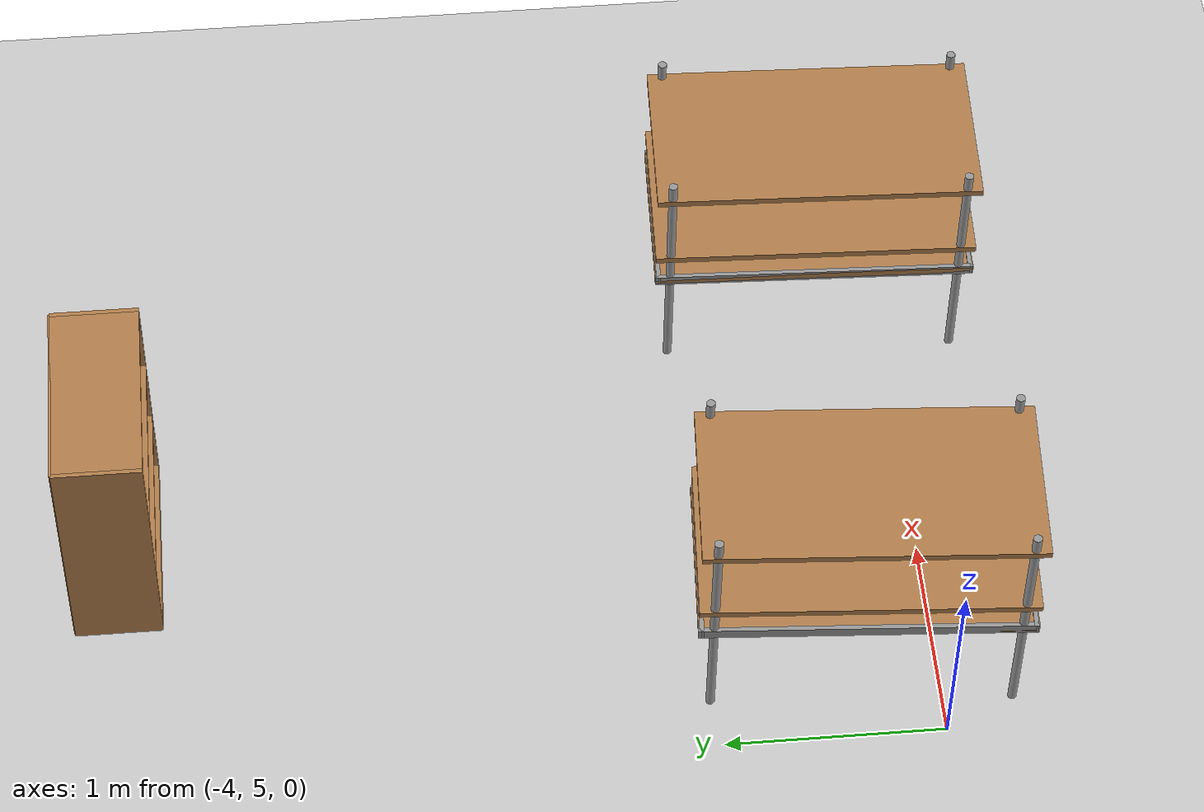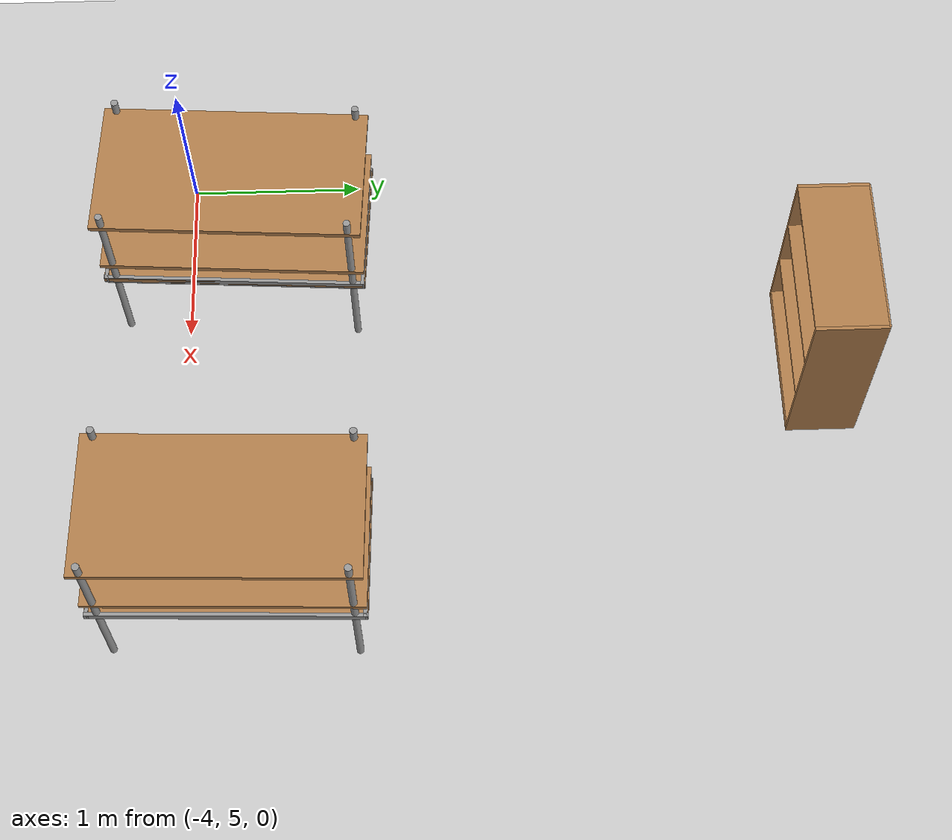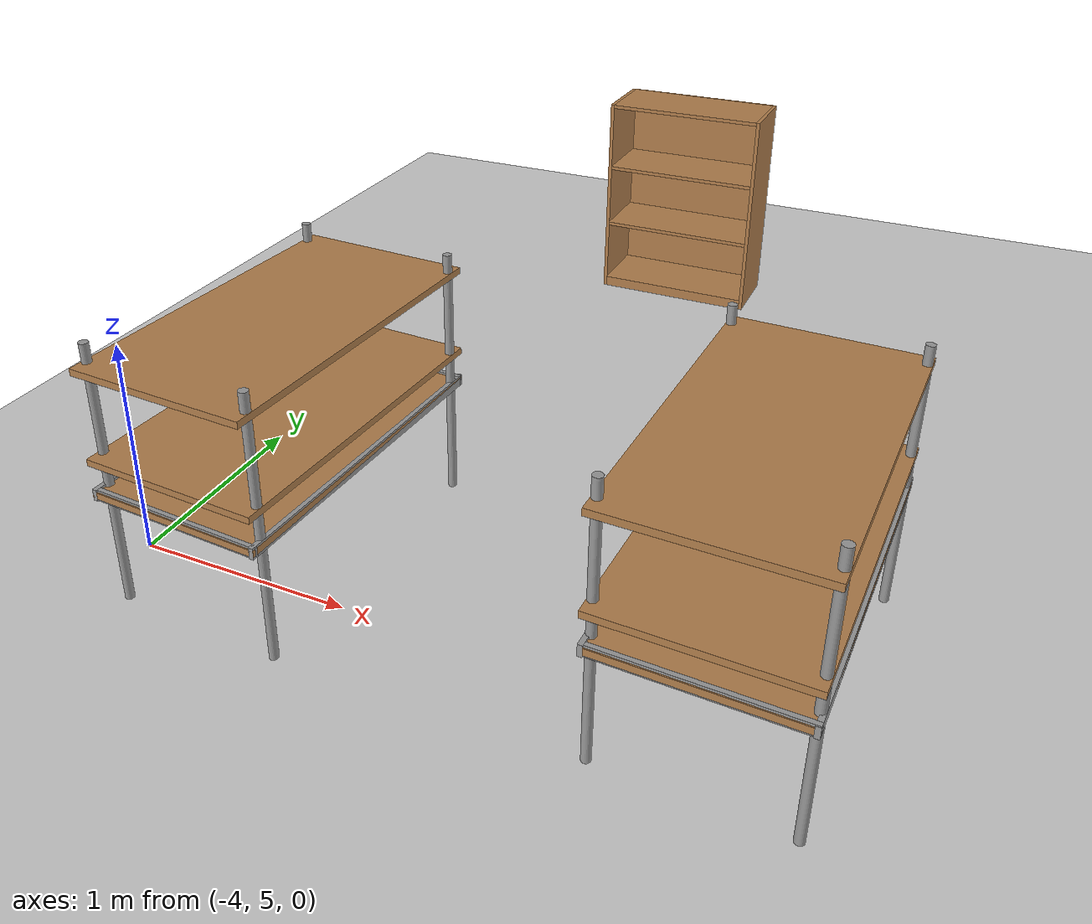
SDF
<sdf version="1.7">
 <world name="default">
  <model name="ground_plane">
   <static>1</static>
   <link name="link">
    <collision name="collision">
     <geometry><plane><normal>0 0 1</normal><size>100 100</size></plane></geometry>
     <surface><friction><ode><mu>100</mu><mu2>50</mu2></ode></friction></surface>
    </collision>
    <visual name="visual">
     <cast_shadows>0</cast_shadows>
     <geometry><plane><normal>0 0 1</normal><size>100 100</size></plane></geometry>
     <material>
      <script><uri>file://media/materials/scripts/gazebo.material</uri><name>Gazebo/Grey</name></script>
     </material>
    </visual>
   </link>
  </model>
  <model name="warehouse_pallet_clone_clone_0">
   <link name="warehouse_pallet::link">
    <pose>0 0 -0 0 -0 1.57</pose>
    <inertial>
     <inertia>
      <ixx>0.0267042</ixx>
      <ixy>0</ixy>
      <ixz>0</ixz>
      <iyy>0.0937875</iyy>
      <iyz>0</iyz>
      <izz>0.120417</izz>
     </inertia>
     <mass>0.5</mass>
    </inertial>
    <visual name="holding1_visual">
     <pose>0 0.39 0.45 0 -0 0</pose>
     <geometry><box><size>1.5 0.02 0.05</size></box></geometry>
     <material>
      <script><uri>file://media/materials/scripts/gazebo.material</uri><name>Gazebo/Grey</name></script>
      <shader type="pixel"><normal_map>__default__</normal_map></shader>
      <ambient>0.3 0.3 0.3 1</ambient>
      <diffuse>0.7 0.7 0.7 1</diffuse>
      <specular>0.01 0.01 0.01 1</specular>
      <emissive>0 0 0 1</emissive>
     </material>
    </visual>
    <visual name="front_left_leg">
     <pose>0.68 0.38 0.5 0 -0 0</pose>
     <geometry><cylinder><radius>0.02</radius><length>1.2</length></cylinder></geometry>
     <material>
      <script><uri>file://media/materials/scripts/gazebo.material</uri><name>Gazebo/Grey</name></script>
      <shader type="pixel"><normal_map>__default__</normal_map></shader>
      <ambient>0.3 0.3 0.3 1</ambient>
      <diffuse>0.7 0.7 0.7 1</diffuse>
      <specular>0.01 0.01 0.01 1</specular>
      <emissive>0 0 0 1</emissive>
     </material>
    </visual>
    <visual name="front_right_leg">
     <pose>0.68 -0.38 0.5 0 -0 0</pose>
     <geometry><cylinder><radius>0.02</radius><length>1.2</length></cylinder></geometry>
     <material>
      <script><uri>file://media/materials/scripts/gazebo.material</uri><name>Gazebo/Grey</name></script>
      <shader type="pixel"><normal_map>__default__</normal_map></shader>
      <ambient>0.3 0.3 0.3 1</ambient>
      <diffuse>0.7 0.7 0.7 1</diffuse>
      <specular>0.01 0.01 0.01 1</specular>
      <emissive>0 0 0 1</emissive>
     </material>
    </visual>
    <visual name="back_right_leg">
     <pose>-0.68 -0.38 0.5 0 -0 0</pose>
     <geometry><cylinder><radius>0.02</radius><length>1.2</length></cylinder></geometry>
     <material>
      <script><uri>file://media/materials/scripts/gazebo.material</uri><name>Gazebo/Grey</name></script>
      <shader type="pixel"><normal_map>__default__</normal_map></shader>
      <ambient>0.3 0.3 0.3 1</ambient>
      <diffuse>0.7 0.7 0.7 1</diffuse>
      <specular>0.01 0.01 0.01 1</specular>
      <emissive>0 0 0 1</emissive>
     </material>
    </visual>
    <visual name="back_left_leg">
     <pose>-0.68 0.38 0.5 0 -0 0</pose>
     <geometry><cylinder><radius>0.02</radius><length>1.2</length></cylinder></geometry>
     <material>
      <script><uri>file://media/materials/scripts/gazebo.material</uri><name>Gazebo/Grey</name></script>
      <shader type="pixel"><normal_map>__default__</normal_map></shader>
      <ambient>0.3 0.3 0.3 1</ambient>
      <diffuse>0.7 0.7 0.7 1</diffuse>
      <specular>0.01 0.01 0.01 1</specular>
      <emissive>0 0 0 1</emissive>
     </material>
    </visual>
    <visual name="visual1">
     <pose>0 0 0.45 0 -0 0</pose>
     <geometry><box><size>1.5 0.8 0.03</size></box></geometry>
     <material>
      <script><uri>file://media/materials/scripts/gazebo.material</uri><name>Gazebo/Wood</name></script>
      <shader type="pixel"><normal_map>__default__</normal_map></shader>
      <ambient>1 1 1 1</ambient>
      <diffuse>1 1 1 1</diffuse>
      <specular>0.2 0.2 0.2 1</specular>
      <emissive>0 0 0 1</emissive>
     </material>
    </visual>
    <visual name="holding2_visual">
     <pose>0 -0.39 0.45 0 -0 0</pose>
     <geometry><box><size>1.5 0.02 0.05</size></box></geometry>
     <material>
      <script><uri>file://media/materials/scripts/gazebo.material</uri><name>Gazebo/Grey</name></script>
      <shader type="pixel"><normal_map>__default__</normal_map></shader>
      <ambient>0.3 0.3 0.3 1</ambient>
      <diffuse>0.7 0.7 0.7 1</diffuse>
      <specular>0.01 0.01 0.01 1</specular>
      <emissive>0 0 0 1</emissive>
     </material>
    </visual>
    <visual name="holding3_visual">
     <pose>0.735 0 0.45 0 -0 1.57</pose>
     <geometry><box><size>0.8 0.02 0.05</size></box></geometry>
     <material>
      <script><uri>file://media/materials/scripts/gazebo.material</uri><name>Gazebo/Grey</name></script>
      <shader type="pixel"><normal_map>__default__</normal_map></shader>
      <ambient>0.3 0.3 0.3 1</ambient>
      <diffuse>0.7 0.7 0.7 1</diffuse>
      <specular>0.01 0.01 0.01 1</specular>
      <emissive>0 0 0 1</emissive>
     </material>
    </visual>
    <visual name="holding4_visual">
     <pose>-0.735 0 0.45 0 -0 1.57</pose>
     <geometry><box><size>0.8 0.02 0.05</size></box></geometry>
     <material>
      <script><uri>file://media/materials/scripts/gazebo.material</uri><name>Gazebo/Grey</name></script>
      <shader type="pixel"><normal_map>__default__</normal_map></shader>
      <ambient>0.3 0.3 0.3 1</ambient>
      <diffuse>0.7 0.7 0.7 1</diffuse>
      <specular>0.01 0.01 0.01 1</specular>
      <emissive>0 0 0 1</emissive>
     </material>
    </visual>
    <visual name="visual2">
     <pose>0 0 0.6 0 -0 0</pose>
     <geometry><box><size>1.5 0.8 0.03</size></box></geometry>
     <material>
      <script><uri>file://media/materials/scripts/gazebo.material</uri><name>Gazebo/Wood</name></script>
      <shader type="pixel"><normal_map>__default__</normal_map></shader>
      <ambient>1 1 1 1</ambient>
      <diffuse>1 1 1 1</diffuse>
      <specular>0.2 0.2 0.2 1</specular>
      <emissive>0 0 0 1</emissive>
     </material>
    </visual>
    <visual name="visual3">
     <pose>0 0 1 0 -0 0</pose>
     <geometry><box><size>1.5 0.8 0.03</size></box></geometry>
     <material>
      <script><uri>file://media/materials/scripts/gazebo.material</uri><name>Gazebo/Wood</name></script>
      <shader type="pixel"><normal_map>__default__</normal_map></shader>
      <ambient>1 1 1 1</ambient>
      <diffuse>1 1 1 1</diffuse>
      <specular>0.2 0.2 0.2 1</specular>
      <emissive>0 0 0 1</emissive>
     </material>
    </visual>
    <collision name="surface1">
     <pose>0 0 0.45 0 -0 0</pose>
     <geometry><box><size>1.5 0.8 0.03</size></box></geometry>
     <surface>
      <friction>
       <ode><mu>20</mu><mu2>20</mu2><fdir1>0 0 0</fdir1><slip1>0</slip1><slip2>0</slip2></ode>
       <torsional>
        <coefficient>1</coefficient>
        <patch_radius>0</patch_radius>
        <surface_radius>0</surface_radius>
        <use_patch_radius>1</use_patch_radius>
        <ode><slip>0</slip></ode>
       </torsional>
      </friction>
      <bounce><restitution_coefficient>0</restitution_coefficient><threshold>1e+06</threshold></bounce>
      <contact>
       <collide_without_contact>0</collide_without_contact>
       <collide_without_contact_bitmask>1</collide_without_contact_bitmask>
       <collide_bitmask>1</collide_bitmask>
       <ode>
        <soft_cfm>0</soft_cfm>
        <soft_erp>0.2</soft_erp>
        <kp>1e+13</kp>
        <kd>1</kd>
        <max_vel>0.01</max_vel>
        <min_depth>0</min_depth>
       </ode>
       <bullet>
        <split_impulse>1</split_impulse>
        <split_impulse_penetration_threshold>-0.01</split_impulse_penetration_threshold>
        <soft_cfm>0</soft_cfm>
        <soft_erp>0.2</soft_erp>
        <kp>1e+13</kp>
        <kd>1</kd>
       </bullet>
      </contact>
     </surface>
    </collision>
    <collision name="holding1_collision">
     <pose>0 0.39 0.45 0 -0 0</pose>
     <geometry><box><size>1.5 0.02 0.05</size></box></geometry>
     <surface>
      <friction>
       <ode><mu>1e+09</mu><mu2>1e+09</mu2><fdir1>0 0 0</fdir1><slip1>0</slip1><slip2>0</slip2></ode>
       <torsional>
        <coefficient>1</coefficient>
        <patch_radius>0</patch_radius>
        <surface_radius>0</surface_radius>
        <use_patch_radius>1</use_patch_radius>
        <ode><slip>0</slip></ode>
       </torsional>
      </friction>
      <bounce><restitution_coefficient>0</restitution_coefficient><threshold>1e+06</threshold></bounce>
      <contact>
       <collide_without_contact>0</collide_without_contact>
       <collide_without_contact_bitmask>1</collide_without_contact_bitmask>
       <collide_bitmask>1</collide_bitmask>
       <ode>
        <soft_cfm>0</soft_cfm>
        <soft_erp>0.2</soft_erp>
        <kp>1e+13</kp>
        <kd>1</kd>
        <max_vel>0.01</max_vel>
        <min_depth>0</min_depth>
       </ode>
       <bullet>
        <split_impulse>1</split_impulse>
        <split_impulse_penetration_threshold>-0.01</split_impulse_penetration_threshold>
        <soft_cfm>0</soft_cfm>
        <soft_erp>0.2</soft_erp>
        <kp>1e+13</kp>
        <kd>1</kd>
       </bullet>
      </contact>
     </surface>
    </collision>
    <collision name="holding2_collision">
     <pose>0 -0.39 0.45 0 -0 0</pose>
     <geometry><box><size>1.5 0.02 0.05</size></box></geometry>
     <surface>
      <friction>
       <ode><mu>1e+09</mu><mu2>1e+09</mu2><fdir1>0 0 0</fdir1><slip1>0</slip1><slip2>0</slip2></ode>
       <torsional>
        <coefficient>1</coefficient>
        <patch_radius>0</patch_radius>
        <surface_radius>0</surface_radius>
        <use_patch_radius>1</use_patch_radius>
        <ode><slip>0</slip></ode>
       </torsional>
      </friction>
      <bounce><restitution_coefficient>0</restitution_coefficient><threshold>1e+06</threshold></bounce>
      <contact>
       <collide_without_contact>0</collide_without_contact>
       <collide_without_contact_bitmask>1</collide_without_contact_bitmask>
       <collide_bitmask>1</collide_bitmask>
       <ode>
        <soft_cfm>0</soft_cfm>
        <soft_erp>0.2</soft_erp>
        <kp>1e+13</kp>
        <kd>1</kd>
        <max_vel>0.01</max_vel>
        <min_depth>0</min_depth>
       </ode>
       <bullet>
        <split_impulse>1</split_impulse>
        <split_impulse_penetration_threshold>-0.01</split_impulse_penetration_threshold>
        <soft_cfm>0</soft_cfm>
        <soft_erp>0.2</soft_erp>
        <kp>1e+13</kp>
        <kd>1</kd>
       </bullet>
      </contact>
     </surface>
    </collision>
    <collision name="holding3_collision">
     <pose>0.735 0 0.45 0 -0 1.57</pose>
     <geometry><box><size>0.8 0.02 0.05</size></box></geometry>
     <surface>
      <friction>
       <ode><mu>1e+09</mu><mu2>1e+09</mu2><fdir1>0 0 0</fdir1><slip1>0</slip1><slip2>0</slip2></ode>
       <torsional>
        <coefficient>1</coefficient>
        <patch_radius>0</patch_radius>
        <surface_radius>0</surface_radius>
        <use_patch_radius>1</use_patch_radius>
        <ode><slip>0</slip></ode>
       </torsional>
      </friction>
      <bounce><restitution_coefficient>0</restitution_coefficient><threshold>1e+06</threshold></bounce>
      <contact>
       <collide_without_contact>0</collide_without_contact>
       <collide_without_contact_bitmask>1</collide_without_contact_bitmask>
       <collide_bitmask>1</collide_bitmask>
       <ode>
        <soft_cfm>0</soft_cfm>
        <soft_erp>0.2</soft_erp>
        <kp>1e+13</kp>
        <kd>1</kd>
        <max_vel>0.01</max_vel>
        <min_depth>0</min_depth>
       </ode>
       <bullet>
        <split_impulse>1</split_impulse>
        <split_impulse_penetration_threshold>-0.01</split_impulse_penetration_threshold>
        <soft_cfm>0</soft_cfm>
        <soft_erp>0.2</soft_erp>
        <kp>1e+13</kp>
        <kd>1</kd>
       </bullet>
      </contact>
     </surface>
    </collision>
    <collision name="holding4_collision">
     <pose>-0.735 0 0.45 0 -0 1.57</pose>
     <geometry><box><size>0.8 0.02 0.05</size></box></geometry>
     <surface>
      <friction>
       <ode><mu>1e+09</mu><mu2>1e+09</mu2><fdir1>0 0 0</fdir1><slip1>0</slip1><slip2>0</slip2></ode>
       <torsional>
        <coefficient>1</coefficient>
        <patch_radius>0</patch_radius>
        <surface_radius>0</surface_radius>
        <use_patch_radius>1</use_patch_radius>
        <ode><slip>0</slip></ode>
       </torsional>
      </friction>
      <bounce><restitution_coefficient>0</restitution_coefficient><threshold>1e+06</threshold></bounce>
      <contact>
       <collide_without_contact>0</collide_without_contact>
       <collide_without_contact_bitmask>1</collide_without_contact_bitmask>
       <collide_bitmask>1</collide_bitmask>
       <ode>
        <soft_cfm>0</soft_cfm>
        <soft_erp>0.2</soft_erp>
        <kp>1e+13</kp>
        <kd>1</kd>
        <max_vel>0.01</max_vel>
        <min_depth>0</min_depth>
       </ode>
       <bullet>
        <split_impulse>1</split_impulse>
        <split_impulse_penetration_threshold>-0.01</split_impulse_penetration_threshold>
        <soft_cfm>0</soft_cfm>
        <soft_erp>0.2</soft_erp>
        <kp>1e+13</kp>
        <kd>1</kd>
       </bullet>
      </contact>
     </surface>
    </collision>
    <collision name="surface3">
     <pose>0 0 1 0 -0 0</pose>
     <geometry><box><size>1.5 0.8 0.03</size></box></geometry>
     <surface>
      <friction>
       <ode><mu>2.5</mu><mu2>2.5</mu2><fdir1>0 0 0</fdir1><slip1>0</slip1><slip2>0</slip2></ode>
       <torsional>
        <coefficient>1</coefficient>
        <patch_radius>0</patch_radius>
        <surface_radius>0</surface_radius>
        <use_patch_radius>1</use_patch_radius>
        <ode><slip>0</slip></ode>
       </torsional>
      </friction>
      <bounce><restitution_coefficient>0</restitution_coefficient><threshold>1e+06</threshold></bounce>
      <contact>
       <collide_without_contact>0</collide_without_contact>
       <collide_without_contact_bitmask>1</collide_without_contact_bitmask>
       <collide_bitmask>1</collide_bitmask>
       <ode>
        <soft_cfm>0</soft_cfm>
        <soft_erp>0.2</soft_erp>
        <kp>1e+13</kp>
        <kd>1</kd>
        <max_vel>0.01</max_vel>
        <min_depth>0</min_depth>
       </ode>
       <bullet>
        <split_impulse>1</split_impulse>
        <split_impulse_penetration_threshold>-0.01</split_impulse_penetration_threshold>
        <soft_cfm>0</soft_cfm>
        <soft_erp>0.2</soft_erp>
        <kp>1e+13</kp>
        <kd>1</kd>
       </bullet>
      </contact>
     </surface>
    </collision>
    <collision name="surface2">
     <pose>0 0 0.6 0 -0 0</pose>
     <geometry><box><size>1.5 0.8 0.03</size></box></geometry>
     <surface>
      <friction>
       <ode><mu>2.5</mu><mu2>2.5</mu2><fdir1>0 0 0</fdir1><slip1>0</slip1><slip2>0</slip2></ode>
       <torsional>
        <coefficient>1</coefficient>
        <patch_radius>0</patch_radius>
        <surface_radius>0</surface_radius>
        <use_patch_radius>1</use_patch_radius>
        <ode><slip>0</slip></ode>
       </torsional>
      </friction>
      <bounce><restitution_coefficient>0</restitution_coefficient><threshold>1e+06</threshold></bounce>
      <contact>
       <collide_without_contact>0</collide_without_contact>
       <collide_without_contact_bitmask>1</collide_without_contact_bitmask>
       <collide_bitmask>1</collide_bitmask>
       <ode>
        <soft_cfm>0</soft_cfm>
        <soft_erp>0.2</soft_erp>
        <kp>1e+13</kp>
        <kd>1</kd>
        <max_vel>0.01</max_vel>
        <min_depth>0</min_depth>
       </ode>
       <bullet>
        <split_impulse>1</split_impulse>
        <split_impulse_penetration_threshold>-0.01</split_impulse_penetration_threshold>
        <soft_cfm>0</soft_cfm>
        <soft_erp>0.2</soft_erp>
        <kp>1e+13</kp>
        <kd>1</kd>
       </bullet>
      </contact>
     </surface>
    </collision>
    <collision name="front_right_leg">
     <pose>0.68 -0.38 0.5 0 -0 0</pose>
     <geometry><cylinder><radius>0.02</radius><length>1</length></cylinder></geometry>
     <surface>
      <friction>
       <ode><mu>1</mu><mu2>1.2</mu2><fdir1>0 0 0</fdir1><slip1>0</slip1><slip2>0</slip2></ode>
       <torsional>
        <coefficient>1</coefficient>
        <patch_radius>0</patch_radius>
        <surface_radius>0</surface_radius>
        <use_patch_radius>1</use_patch_radius>
        <ode><slip>0</slip></ode>
       </torsional>
      </friction>
      <bounce><restitution_coefficient>0</restitution_coefficient><threshold>1e+06</threshold></bounce>
      <contact>
       <collide_without_contact>0</collide_without_contact>
       <collide_without_contact_bitmask>1</collide_without_contact_bitmask>
       <collide_bitmask>1</collide_bitmask>
       <ode>
        <soft_cfm>0</soft_cfm>
        <soft_erp>0.2</soft_erp>
        <kp>1e+13</kp>
        <kd>1</kd>
        <max_vel>0.01</max_vel>
        <min_depth>0</min_depth>
       </ode>
       <bullet>
        <split_impulse>1</split_impulse>
        <split_impulse_penetration_threshold>-0.01</split_impulse_penetration_threshold>
        <soft_cfm>0</soft_cfm>
        <soft_erp>0.2</soft_erp>
        <kp>1e+13</kp>
        <kd>1</kd>
       </bullet>
      </contact>
     </surface>
    </collision>
    <collision name="back_right_leg">
     <pose>-0.68 -0.38 0.5 0 -0 0</pose>
     <geometry><cylinder><radius>0.02</radius><length>1.2</length></cylinder></geometry>
     <surface>
      <friction>
       <ode><mu>1</mu><mu2>1</mu2><fdir1>0 0 0</fdir1><slip1>0</slip1><slip2>0</slip2></ode>
       <torsional>
        <coefficient>1</coefficient>
        <patch_radius>0</patch_radius>
        <surface_radius>0</surface_radius>
        <use_patch_radius>1</use_patch_radius>
        <ode><slip>0</slip></ode>
       </torsional>
      </friction>
      <bounce><restitution_coefficient>0</restitution_coefficient><threshold>1e+06</threshold></bounce>
      <contact>
       <collide_without_contact>0</collide_without_contact>
       <collide_without_contact_bitmask>1</collide_without_contact_bitmask>
       <collide_bitmask>1</collide_bitmask>
       <ode>
        <soft_cfm>0</soft_cfm>
        <soft_erp>0.2</soft_erp>
        <kp>1e+13</kp>
        <kd>1</kd>
        <max_vel>0.01</max_vel>
        <min_depth>0</min_depth>
       </ode>
       <bullet>
        <split_impulse>1</split_impulse>
        <split_impulse_penetration_threshold>-0.01</split_impulse_penetration_threshold>
        <soft_cfm>0</soft_cfm>
        <soft_erp>0.2</soft_erp>
        <kp>1e+13</kp>
        <kd>1</kd>
       </bullet>
      </contact>
     </surface>
    </collision>
    <collision name="front_left_leg">
     <pose>0.68 0.38 0.5 0 -0 0</pose>
     <geometry><cylinder><radius>0.02</radius><length>1.2</length></cylinder></geometry>
     <surface>
      <friction>
       <ode><mu>1</mu><mu2>1</mu2><fdir1>0 0 0</fdir1><slip1>0</slip1><slip2>0</slip2></ode>
       <torsional>
        <coefficient>1</coefficient>
        <patch_radius>0</patch_radius>
        <surface_radius>0</surface_radius>
        <use_patch_radius>1</use_patch_radius>
        <ode><slip>0</slip></ode>
       </torsional>
      </friction>
      <bounce><restitution_coefficient>0</restitution_coefficient><threshold>1e+06</threshold></bounce>
      <contact>
       <collide_without_contact>0</collide_without_contact>
       <collide_without_contact_bitmask>1</collide_without_contact_bitmask>
       <collide_bitmask>1</collide_bitmask>
       <ode>
        <soft_cfm>0</soft_cfm>
        <soft_erp>0.2</soft_erp>
        <kp>1e+13</kp>
        <kd>1</kd>
        <max_vel>0.01</max_vel>
        <min_depth>0</min_depth>
       </ode>
       <bullet>
        <split_impulse>1</split_impulse>
        <split_impulse_penetration_threshold>-0.01</split_impulse_penetration_threshold>
        <soft_cfm>0</soft_cfm>
        <soft_erp>0.2</soft_erp>
        <kp>1e+13</kp>
        <kd>1</kd>
       </bullet>
      </contact>
     </surface>
    </collision>
    <collision name="back_left_leg">
     <pose>-0.68 0.38 0.5 0 -0 0</pose>
     <geometry><cylinder><radius>0.02</radius><length>1.2</length></cylinder></geometry>
     <surface>
      <friction>
       <ode><mu>1</mu><mu2>1</mu2><fdir1>0 0 0</fdir1><slip1>0</slip1><slip2>0</slip2></ode>
       <torsional>
        <coefficient>1</coefficient>
        <patch_radius>0</patch_radius>
        <surface_radius>0</surface_radius>
        <use_patch_radius>1</use_patch_radius>
        <ode><slip>0</slip></ode>
       </torsional>
      </friction>
      <bounce><restitution_coefficient>0</restitution_coefficient><threshold>1e+06</threshold></bounce>
      <contact>
       <collide_without_contact>0</collide_without_contact>
       <collide_without_contact_bitmask>1</collide_without_contact_bitmask>
       <collide_bitmask>1</collide_bitmask>
       <ode>
        <soft_cfm>0</soft_cfm>
        <soft_erp>0.2</soft_erp>
        <kp>1e+13</kp>
        <kd>1</kd>
        <max_vel>0.01</max_vel>
        <min_depth>0</min_depth>
       </ode>
       <bullet>
        <split_impulse>1</split_impulse>
        <split_impulse_penetration_threshold>-0.01</split_impulse_penetration_threshold>
        <soft_cfm>0</soft_cfm>
        <soft_erp>0.2</soft_erp>
        <kp>1e+13</kp>
        <kd>1</kd>
       </bullet>
      </contact>
     </surface>
    </collision>
   </link>
   <static>0</static>
   <pose>-3.42091 5.34005 0.099963 -0.0001 7.7e-05 -0.060071</pose>
  </model>
  <model name="warehouse_pallet_clone_0_clone_1">
   <link name="warehouse_pallet::link">
    <pose>0 0 -0 0 -0 1.57</pose>
    <inertial>
     <inertia>
      <ixx>0.0267042</ixx>
      <ixy>0</ixy>
      <ixz>0</ixz>
      <iyy>0.0937875</iyy>
      <iyz>0</iyz>
      <izz>0.120417</izz>
     </inertia>
     <mass>0.5</mass>
    </inertial>
    <visual name="holding1_visual">
     <pose>0 0.39 0.45 0 -0 0</pose>
     <geometry><box><size>1.5 0.02 0.05</size></box></geometry>
     <material>
      <script><uri>file://media/materials/scripts/gazebo.material</uri><name>Gazebo/Grey</name></script>
      <shader type="pixel"><normal_map>__default__</normal_map></shader>
      <ambient>0.3 0.3 0.3 1</ambient>
      <diffuse>0.7 0.7 0.7 1</diffuse>
      <specular>0.01 0.01 0.01 1</specular>
      <emissive>0 0 0 1</emissive>
     </material>
    </visual>
    <visual name="front_left_leg">
     <pose>0.68 0.38 0.5 0 -0 0</pose>
     <geometry><cylinder><radius>0.02</radius><length>1.2</length></cylinder></geometry>
     <material>
      <script><uri>file://media/materials/scripts/gazebo.material</uri><name>Gazebo/Grey</name></script>
      <shader type="pixel"><normal_map>__default__</normal_map></shader>
      <ambient>0.3 0.3 0.3 1</ambient>
      <diffuse>0.7 0.7 0.7 1</diffuse>
      <specular>0.01 0.01 0.01 1</specular>
      <emissive>0 0 0 1</emissive>
     </material>
    </visual>
    <visual name="front_right_leg">
     <pose>0.68 -0.38 0.5 0 -0 0</pose>
     <geometry><cylinder><radius>0.02</radius><length>1.2</length></cylinder></geometry>
     <material>
      <script><uri>file://media/materials/scripts/gazebo.material</uri><name>Gazebo/Grey</name></script>
      <shader type="pixel"><normal_map>__default__</normal_map></shader>
      <ambient>0.3 0.3 0.3 1</ambient>
      <diffuse>0.7 0.7 0.7 1</diffuse>
      <specular>0.01 0.01 0.01 1</specular>
      <emissive>0 0 0 1</emissive>
     </material>
    </visual>
    <visual name="back_right_leg">
     <pose>-0.68 -0.38 0.5 0 -0 0</pose>
     <geometry><cylinder><radius>0.02</radius><length>1.2</length></cylinder></geometry>
     <material>
      <script><uri>file://media/materials/scripts/gazebo.material</uri><name>Gazebo/Grey</name></script>
      <shader type="pixel"><normal_map>__default__</normal_map></shader>
      <ambient>0.3 0.3 0.3 1</ambient>
      <diffuse>0.7 0.7 0.7 1</diffuse>
      <specular>0.01 0.01 0.01 1</specular>
      <emissive>0 0 0 1</emissive>
     </material>
    </visual>
    <visual name="back_left_leg">
     <pose>-0.68 0.38 0.5 0 -0 0</pose>
     <geometry><cylinder><radius>0.02</radius><length>1.2</length></cylinder></geometry>
     <material>
      <script><uri>file://media/materials/scripts/gazebo.material</uri><name>Gazebo/Grey</name></script>
      <shader type="pixel"><normal_map>__default__</normal_map></shader>
      <ambient>0.3 0.3 0.3 1</ambient>
      <diffuse>0.7 0.7 0.7 1</diffuse>
      <specular>0.01 0.01 0.01 1</specular>
      <emissive>0 0 0 1</emissive>
     </material>
    </visual>
    <visual name="visual1">
     <pose>0 0 0.45 0 -0 0</pose>
     <geometry><box><size>1.5 0.8 0.03</size></box></geometry>
     <material>
      <script><uri>file://media/materials/scripts/gazebo.material</uri><name>Gazebo/Wood</name></script>
      <shader type="pixel"><normal_map>__default__</normal_map></shader>
      <ambient>1 1 1 1</ambient>
      <diffuse>1 1 1 1</diffuse>
      <specular>0.2 0.2 0.2 1</specular>
      <emissive>0 0 0 1</emissive>
     </material>
    </visual>
    <visual name="holding2_visual">
     <pose>0 -0.39 0.45 0 -0 0</pose>
     <geometry><box><size>1.5 0.02 0.05</size></box></geometry>
     <material>
      <script><uri>file://media/materials/scripts/gazebo.material</uri><name>Gazebo/Grey</name></script>
      <shader type="pixel"><normal_map>__default__</normal_map></shader>
      <ambient>0.3 0.3 0.3 1</ambient>
      <diffuse>0.7 0.7 0.7 1</diffuse>
      <specular>0.01 0.01 0.01 1</specular>
      <emissive>0 0 0 1</emissive>
     </material>
    </visual>
    <visual name="holding3_visual">
     <pose>0.735 0 0.45 0 -0 1.57</pose>
     <geometry><box><size>0.8 0.02 0.05</size></box></geometry>
     <material>
      <script><uri>file://media/materials/scripts/gazebo.material</uri><name>Gazebo/Grey</name></script>
      <shader type="pixel"><normal_map>__default__</normal_map></shader>
      <ambient>0.3 0.3 0.3 1</ambient>
      <diffuse>0.7 0.7 0.7 1</diffuse>
      <specular>0.01 0.01 0.01 1</specular>
      <emissive>0 0 0 1</emissive>
     </material>
    </visual>
    <visual name="holding4_visual">
     <pose>-0.735 0 0.45 0 -0 1.57</pose>
     <geometry><box><size>0.8 0.02 0.05</size></box></geometry>
     <material>
      <script><uri>file://media/materials/scripts/gazebo.material</uri><name>Gazebo/Grey</name></script>
      <shader type="pixel"><normal_map>__default__</normal_map></shader>
      <ambient>0.3 0.3 0.3 1</ambient>
      <diffuse>0.7 0.7 0.7 1</diffuse>
      <specular>0.01 0.01 0.01 1</specular>
      <emissive>0 0 0 1</emissive>
     </material>
    </visual>
    <visual name="visual2">
     <pose>0 0 0.6 0 -0 0</pose>
     <geometry><box><size>1.5 0.8 0.03</size></box></geometry>
     <material>
      <script><uri>file://media/materials/scripts/gazebo.material</uri><name>Gazebo/Wood</name></script>
      <shader type="pixel"><normal_map>__default__</normal_map></shader>
      <ambient>1 1 1 1</ambient>
      <diffuse>1 1 1 1</diffuse>
      <specular>0.2 0.2 0.2 1</specular>
      <emissive>0 0 0 1</emissive>
     </material>
    </visual>
    <visual name="visual3">
     <pose>0 0 1 0 -0 0</pose>
     <geometry><box><size>1.5 0.8 0.03</size></box></geometry>
     <material>
      <script><uri>file://media/materials/scripts/gazebo.material</uri><name>Gazebo/Wood</name></script>
      <shader type="pixel"><normal_map>__default__</normal_map></shader>
      <ambient>1 1 1 1</ambient>
      <diffuse>1 1 1 1</diffuse>
      <specular>0.2 0.2 0.2 1</specular>
      <emissive>0 0 0 1</emissive>
     </material>
    </visual>
    <collision name="surface1">
     <pose>0 0 0.45 0 -0 0</pose>
     <geometry><box><size>1.5 0.8 0.03</size></box></geometry>
     <surface>
      <friction>
       <ode><mu>20</mu><mu2>20</mu2><fdir1>0 0 0</fdir1><slip1>0</slip1><slip2>0</slip2></ode>
       <torsional>
        <coefficient>1</coefficient>
        <patch_radius>0</patch_radius>
        <surface_radius>0</surface_radius>
        <use_patch_radius>1</use_patch_radius>
        <ode><slip>0</slip></ode>
       </torsional>
      </friction>
      <bounce><restitution_coefficient>0</restitution_coefficient><threshold>1e+06</threshold></bounce>
      <contact>
       <collide_without_contact>0</collide_without_contact>
       <collide_without_contact_bitmask>1</collide_without_contact_bitmask>
       <collide_bitmask>1</collide_bitmask>
       <ode>
        <soft_cfm>0</soft_cfm>
        <soft_erp>0.2</soft_erp>
        <kp>1e+13</kp>
        <kd>1</kd>
        <max_vel>0.01</max_vel>
        <min_depth>0</min_depth>
       </ode>
       <bullet>
        <split_impulse>1</split_impulse>
        <split_impulse_penetration_threshold>-0.01</split_impulse_penetration_threshold>
        <soft_cfm>0</soft_cfm>
        <soft_erp>0.2</soft_erp>
        <kp>1e+13</kp>
        <kd>1</kd>
       </bullet>
      </contact>
     </surface>
    </collision>
    <collision name="holding1_collision">
     <pose>0 0.39 0.45 0 -0 0</pose>
     <geometry><box><size>1.5 0.02 0.05</size></box></geometry>
     <surface>
      <friction>
       <ode><mu>1e+09</mu><mu2>1e+09</mu2><fdir1>0 0 0</fdir1><slip1>0</slip1><slip2>0</slip2></ode>
       <torsional>
        <coefficient>1</coefficient>
        <patch_radius>0</patch_radius>
        <surface_radius>0</surface_radius>
        <use_patch_radius>1</use_patch_radius>
        <ode><slip>0</slip></ode>
       </torsional>
      </friction>
      <bounce><restitution_coefficient>0</restitution_coefficient><threshold>1e+06</threshold></bounce>
      <contact>
       <collide_without_contact>0</collide_without_contact>
       <collide_without_contact_bitmask>1</collide_without_contact_bitmask>
       <collide_bitmask>1</collide_bitmask>
       <ode>
        <soft_cfm>0</soft_cfm>
        <soft_erp>0.2</soft_erp>
        <kp>1e+13</kp>
        <kd>1</kd>
        <max_vel>0.01</max_vel>
        <min_depth>0</min_depth>
       </ode>
       <bullet>
        <split_impulse>1</split_impulse>
        <split_impulse_penetration_threshold>-0.01</split_impulse_penetration_threshold>
        <soft_cfm>0</soft_cfm>
        <soft_erp>0.2</soft_erp>
        <kp>1e+13</kp>
        <kd>1</kd>
       </bullet>
      </contact>
     </surface>
    </collision>
    <collision name="holding2_collision">
     <pose>0 -0.39 0.45 0 -0 0</pose>
     <geometry><box><size>1.5 0.02 0.05</size></box></geometry>
     <surface>
      <friction>
       <ode><mu>1e+09</mu><mu2>1e+09</mu2><fdir1>0 0 0</fdir1><slip1>0</slip1><slip2>0</slip2></ode>
       <torsional>
        <coefficient>1</coefficient>
        <patch_radius>0</patch_radius>
        <surface_radius>0</surface_radius>
        <use_patch_radius>1</use_patch_radius>
        <ode><slip>0</slip></ode>
       </torsional>
      </friction>
      <bounce><restitution_coefficient>0</restitution_coefficient><threshold>1e+06</threshold></bounce>
      <contact>
       <collide_without_contact>0</collide_without_contact>
       <collide_without_contact_bitmask>1</collide_without_contact_bitmask>
       <collide_bitmask>1</collide_bitmask>
       <ode>
        <soft_cfm>0</soft_cfm>
        <soft_erp>0.2</soft_erp>
        <kp>1e+13</kp>
        <kd>1</kd>
        <max_vel>0.01</max_vel>
        <min_depth>0</min_depth>
       </ode>
       <bullet>
        <split_impulse>1</split_impulse>
        <split_impulse_penetration_threshold>-0.01</split_impulse_penetration_threshold>
        <soft_cfm>0</soft_cfm>
        <soft_erp>0.2</soft_erp>
        <kp>1e+13</kp>
        <kd>1</kd>
       </bullet>
      </contact>
     </surface>
    </collision>
    <collision name="holding3_collision">
     <pose>0.735 0 0.45 0 -0 1.57</pose>
     <geometry><box><size>0.8 0.02 0.05</size></box></geometry>
     <surface>
      <friction>
       <ode><mu>1e+09</mu><mu2>1e+09</mu2><fdir1>0 0 0</fdir1><slip1>0</slip1><slip2>0</slip2></ode>
       <torsional>
        <coefficient>1</coefficient>
        <patch_radius>0</patch_radius>
        <surface_radius>0</surface_radius>
        <use_patch_radius>1</use_patch_radius>
        <ode><slip>0</slip></ode>
       </torsional>
      </friction>
      <bounce><restitution_coefficient>0</restitution_coefficient><threshold>1e+06</threshold></bounce>
      <contact>
       <collide_without_contact>0</collide_without_contact>
       <collide_without_contact_bitmask>1</collide_without_contact_bitmask>
       <collide_bitmask>1</collide_bitmask>
       <ode>
        <soft_cfm>0</soft_cfm>
        <soft_erp>0.2</soft_erp>
        <kp>1e+13</kp>
        <kd>1</kd>
        <max_vel>0.01</max_vel>
        <min_depth>0</min_depth>
       </ode>
       <bullet>
        <split_impulse>1</split_impulse>
        <split_impulse_penetration_threshold>-0.01</split_impulse_penetration_threshold>
        <soft_cfm>0</soft_cfm>
        <soft_erp>0.2</soft_erp>
        <kp>1e+13</kp>
        <kd>1</kd>
       </bullet>
      </contact>
     </surface>
    </collision>
    <collision name="holding4_collision">
     <pose>-0.735 0 0.45 0 -0 1.57</pose>
     <geometry><box><size>0.8 0.02 0.05</size></box></geometry>
     <surface>
      <friction>
       <ode><mu>1e+09</mu><mu2>1e+09</mu2><fdir1>0 0 0</fdir1><slip1>0</slip1><slip2>0</slip2></ode>
       <torsional>
        <coefficient>1</coefficient>
        <patch_radius>0</patch_radius>
        <surface_radius>0</surface_radius>
        <use_patch_radius>1</use_patch_radius>
        <ode><slip>0</slip></ode>
       </torsional>
      </friction>
      <bounce><restitution_coefficient>0</restitution_coefficient><threshold>1e+06</threshold></bounce>
      <contact>
       <collide_without_contact>0</collide_without_contact>
       <collide_without_contact_bitmask>1</collide_without_contact_bitmask>
       <collide_bitmask>1</collide_bitmask>
       <ode>
        <soft_cfm>0</soft_cfm>
        <soft_erp>0.2</soft_erp>
        <kp>1e+13</kp>
        <kd>1</kd>
        <max_vel>0.01</max_vel>
        <min_depth>0</min_depth>
       </ode>
       <bullet>
        <split_impulse>1</split_impulse>
        <split_impulse_penetration_threshold>-0.01</split_impulse_penetration_threshold>
        <soft_cfm>0</soft_cfm>
        <soft_erp>0.2</soft_erp>
        <kp>1e+13</kp>
        <kd>1</kd>
       </bullet>
      </contact>
     </surface>
    </collision>
    <collision name="surface3">
     <pose>0 0 1 0 -0 0</pose>
     <geometry><box><size>1.5 0.8 0.03</size></box></geometry>
     <surface>
      <friction>
       <ode><mu>2.5</mu><mu2>2.5</mu2><fdir1>0 0 0</fdir1><slip1>0</slip1><slip2>0</slip2></ode>
       <torsional>
        <coefficient>1</coefficient>
        <patch_radius>0</patch_radius>
        <surface_radius>0</surface_radius>
        <use_patch_radius>1</use_patch_radius>
        <ode><slip>0</slip></ode>
       </torsional>
      </friction>
      <bounce><restitution_coefficient>0</restitution_coefficient><threshold>1e+06</threshold></bounce>
      <contact>
       <collide_without_contact>0</collide_without_contact>
       <collide_without_contact_bitmask>1</collide_without_contact_bitmask>
       <collide_bitmask>1</collide_bitmask>
       <ode>
        <soft_cfm>0</soft_cfm>
        <soft_erp>0.2</soft_erp>
        <kp>1e+13</kp>
        <kd>1</kd>
        <max_vel>0.01</max_vel>
        <min_depth>0</min_depth>
       </ode>
       <bullet>
        <split_impulse>1</split_impulse>
        <split_impulse_penetration_threshold>-0.01</split_impulse_penetration_threshold>
        <soft_cfm>0</soft_cfm>
        <soft_erp>0.2</soft_erp>
        <kp>1e+13</kp>
        <kd>1</kd>
       </bullet>
      </contact>
     </surface>
    </collision>
    <collision name="surface2">
     <pose>0 0 0.6 0 -0 0</pose>
     <geometry><box><size>1.5 0.8 0.03</size></box></geometry>
     <surface>
      <friction>
       <ode><mu>2.5</mu><mu2>2.5</mu2><fdir1>0 0 0</fdir1><slip1>0</slip1><slip2>0</slip2></ode>
       <torsional>
        <coefficient>1</coefficient>
        <patch_radius>0</patch_radius>
        <surface_radius>0</surface_radius>
        <use_patch_radius>1</use_patch_radius>
        <ode><slip>0</slip></ode>
       </torsional>
      </friction>
      <bounce><restitution_coefficient>0</restitution_coefficient><threshold>1e+06</threshold></bounce>
      <contact>
       <collide_without_contact>0</collide_without_contact>
       <collide_without_contact_bitmask>1</collide_without_contact_bitmask>
       <collide_bitmask>1</collide_bitmask>
       <ode>
        <soft_cfm>0</soft_cfm>
        <soft_erp>0.2</soft_erp>
        <kp>1e+13</kp>
        <kd>1</kd>
        <max_vel>0.01</max_vel>
        <min_depth>0</min_depth>
       </ode>
       <bullet>
        <split_impulse>1</split_impulse>
        <split_impulse_penetration_threshold>-0.01</split_impulse_penetration_threshold>
        <soft_cfm>0</soft_cfm>
        <soft_erp>0.2</soft_erp>
        <kp>1e+13</kp>
        <kd>1</kd>
       </bullet>
      </contact>
     </surface>
    </collision>
    <collision name="front_right_leg">
     <pose>0.68 -0.38 0.5 0 -0 0</pose>
     <geometry><cylinder><radius>0.02</radius><length>1</length></cylinder></geometry>
     <surface>
      <friction>
       <ode><mu>1</mu><mu2>1.2</mu2><fdir1>0 0 0</fdir1><slip1>0</slip1><slip2>0</slip2></ode>
       <torsional>
        <coefficient>1</coefficient>
        <patch_radius>0</patch_radius>
        <surface_radius>0</surface_radius>
        <use_patch_radius>1</use_patch_radius>
        <ode><slip>0</slip></ode>
       </torsional>
      </friction>
      <bounce><restitution_coefficient>0</restitution_coefficient><threshold>1e+06</threshold></bounce>
      <contact>
       <collide_without_contact>0</collide_without_contact>
       <collide_without_contact_bitmask>1</collide_without_contact_bitmask>
       <collide_bitmask>1</collide_bitmask>
       <ode>
        <soft_cfm>0</soft_cfm>
        <soft_erp>0.2</soft_erp>
        <kp>1e+13</kp>
        <kd>1</kd>
        <max_vel>0.01</max_vel>
        <min_depth>0</min_depth>
       </ode>
       <bullet>
        <split_impulse>1</split_impulse>
        <split_impulse_penetration_threshold>-0.01</split_impulse_penetration_threshold>
        <soft_cfm>0</soft_cfm>
        <soft_erp>0.2</soft_erp>
        <kp>1e+13</kp>
        <kd>1</kd>
       </bullet>
      </contact>
     </surface>
    </collision>
    <collision name="back_right_leg">
     <pose>-0.68 -0.38 0.5 0 -0 0</pose>
     <geometry><cylinder><radius>0.02</radius><length>1.2</length></cylinder></geometry>
     <surface>
      <friction>
       <ode><mu>1</mu><mu2>1</mu2><fdir1>0 0 0</fdir1><slip1>0</slip1><slip2>0</slip2></ode>
       <torsional>
        <coefficient>1</coefficient>
        <patch_radius>0</patch_radius>
        <surface_radius>0</surface_radius>
        <use_patch_radius>1</use_patch_radius>
        <ode><slip>0</slip></ode>
       </torsional>
      </friction>
      <bounce><restitution_coefficient>0</restitution_coefficient><threshold>1e+06</threshold></bounce>
      <contact>
       <collide_without_contact>0</collide_without_contact>
       <collide_without_contact_bitmask>1</collide_without_contact_bitmask>
       <collide_bitmask>1</collide_bitmask>
       <ode>
        <soft_cfm>0</soft_cfm>
        <soft_erp>0.2</soft_erp>
        <kp>1e+13</kp>
        <kd>1</kd>
        <max_vel>0.01</max_vel>
        <min_depth>0</min_depth>
       </ode>
       <bullet>
        <split_impulse>1</split_impulse>
        <split_impulse_penetration_threshold>-0.01</split_impulse_penetration_threshold>
        <soft_cfm>0</soft_cfm>
        <soft_erp>0.2</soft_erp>
        <kp>1e+13</kp>
        <kd>1</kd>
       </bullet>
      </contact>
     </surface>
    </collision>
    <collision name="front_left_leg">
     <pose>0.68 0.38 0.5 0 -0 0</pose>
     <geometry><cylinder><radius>0.02</radius><length>1.2</length></cylinder></geometry>
     <surface>
      <friction>
       <ode><mu>1</mu><mu2>1</mu2><fdir1>0 0 0</fdir1><slip1>0</slip1><slip2>0</slip2></ode>
       <torsional>
        <coefficient>1</coefficient>
        <patch_radius>0</patch_radius>
        <surface_radius>0</surface_radius>
        <use_patch_radius>1</use_patch_radius>
        <ode><slip>0</slip></ode>
       </torsional>
      </friction>
      <bounce><restitution_coefficient>0</restitution_coefficient><threshold>1e+06</threshold></bounce>
      <contact>
       <collide_without_contact>0</collide_without_contact>
       <collide_without_contact_bitmask>1</collide_without_contact_bitmask>
       <collide_bitmask>1</collide_bitmask>
       <ode>
        <soft_cfm>0</soft_cfm>
        <soft_erp>0.2</soft_erp>
        <kp>1e+13</kp>
        <kd>1</kd>
        <max_vel>0.01</max_vel>
        <min_depth>0</min_depth>
       </ode>
       <bullet>
        <split_impulse>1</split_impulse>
        <split_impulse_penetration_threshold>-0.01</split_impulse_penetration_threshold>
        <soft_cfm>0</soft_cfm>
        <soft_erp>0.2</soft_erp>
        <kp>1e+13</kp>
        <kd>1</kd>
       </bullet>
      </contact>
     </surface>
    </collision>
    <collision name="back_left_leg">
     <pose>-0.68 0.38 0.5 0 -0 0</pose>
     <geometry><cylinder><radius>0.02</radius><length>1.2</length></cylinder></geometry>
     <surface>
      <friction>
       <ode><mu>1</mu><mu2>1</mu2><fdir1>0 0 0</fdir1><slip1>0</slip1><slip2>0</slip2></ode>
       <torsional>
        <coefficient>1</coefficient>
        <patch_radius>0</patch_radius>
        <surface_radius>0</surface_radius>
        <use_patch_radius>1</use_patch_radius>
        <ode><slip>0</slip></ode>
       </torsional>
      </friction>
      <bounce><restitution_coefficient>0</restitution_coefficient><threshold>1e+06</threshold></bounce>
      <contact>
       <collide_without_contact>0</collide_without_contact>
       <collide_without_contact_bitmask>1</collide_without_contact_bitmask>
       <collide_bitmask>1</collide_bitmask>
       <ode>
        <soft_cfm>0</soft_cfm>
        <soft_erp>0.2</soft_erp>
        <kp>1e+13</kp>
        <kd>1</kd>
        <max_vel>0.01</max_vel>
        <min_depth>0</min_depth>
       </ode>
       <bullet>
        <split_impulse>1</split_impulse>
        <split_impulse_penetration_threshold>-0.01</split_impulse_penetration_threshold>
        <soft_cfm>0</soft_cfm>
        <soft_erp>0.2</soft_erp>
        <kp>1e+13</kp>
        <kd>1</kd>
       </bullet>
      </contact>
     </surface>
    </collision>
   </link>
   <static>0</static>
   <pose>-1.38321 5.33855 0.099963 -3.6e-05 0.000171 -0.033396</pose>
  </model>
  <model name="bookshelf_0">
   <static>1</static>
   <link name="link">
    <inertial><mass>1</mass></inertial>
    <collision name="back">
     <pose>0 0.005 0.6 0 -0 0</pose>
     <geometry><box><size>0.9 0.01 1.2</size></box></geometry>
    </collision>
    <visual name="visual1">
     <pose>0 0.005 0.6 0 -0 0</pose>
     <geometry><box><size>0.9 0.01 1.2</size></box></geometry>
     <material>
      <script><uri>file://media/materials/scripts/gazebo.material</uri><name>Gazebo/Wood</name></script>
     </material>
    </visual>
    <collision name="left_side">
     <pose>0.45 -0.195 0.6 0 -0 0</pose>
     <geometry><box><size>0.02 0.4 1.2</size></box></geometry>
    </collision>
    <visual name="visual2">
     <pose>0.45 -0.195 0.6 0 -0 0</pose>
     <geometry><box><size>0.02 0.4 1.2</size></box></geometry>
     <material>
      <script><uri>file://media/materials/scripts/gazebo.material</uri><name>Gazebo/Wood</name></script>
     </material>
    </visual>
    <collision name="right_side">
     <pose>-0.45 -0.195 0.6 0 -0 0</pose>
     <geometry><box><size>0.02 0.4 1.2</size></box></geometry>
    </collision>
    <visual name="visual3">
     <pose>-0.45 -0.195 0.6 0 -0 0</pose>
     <geometry><box><size>0.02 0.4 1.2</size></box></geometry>
     <material>
      <script><uri>file://media/materials/scripts/gazebo.material</uri><name>Gazebo/Wood</name></script>
     </material>
    </visual>
    <collision name="bottom">
     <pose>0 -0.195 0.03 0 -0 0</pose>
     <geometry><box><size>0.88 0.4 0.06</size></box></geometry>
    </collision>
    <visual name="visual4">
     <pose>0 -0.195 0.03 0 -0 0</pose>
     <geometry><box><size>0.88 0.4 0.06</size></box></geometry>
     <material>
      <script><uri>file://media/materials/scripts/gazebo.material</uri><name>Gazebo/Wood</name></script>
     </material>
    </visual>
    <collision name="top">
     <pose>0 -0.195 1.19 0 -0 0</pose>
     <geometry><box><size>0.88 0.4 0.02</size></box></geometry>
    </collision>
    <visual name="visual5">
     <pose>0 -0.195 1.19 0 -0 0</pose>
     <geometry><box><size>0.88 0.4 0.02</size></box></geometry>
     <material>
      <script><uri>file://media/materials/scripts/gazebo.material</uri><name>Gazebo/Wood</name></script>
     </material>
    </visual>
    <collision name="low_shelf">
     <pose>0 -0.195 0.43 0 -0 0</pose>
     <geometry><box><size>0.88 0.4 0.02</size></box></geometry>
    </collision>
    <visual name="visual6">
     <pose>0 -0.195 0.43 0 -0 0</pose>
     <geometry><box><size>0.88 0.4 0.02</size></box></geometry>
     <material>
      <script><uri>file://media/materials/scripts/gazebo.material</uri><name>Gazebo/Wood</name></script>
     </material>
    </visual>
    <collision name="high_shelf">
     <pose>0 -0.195 0.8 0 -0 0</pose>
     <geometry><box><size>0.88 0.4 0.02</size></box></geometry>
    </collision>
    <visual name="visual7">
     <pose>0 -0.195 0.8 0 -0 0</pose>
     <geometry><box><size>0.88 0.4 0.02</size></box></geometry>
     <material>
      <script><uri>file://media/materials/scripts/gazebo.material</uri><name>Gazebo/Wood</name></script>
     </material>
    </visual>
   </link>
   <pose>-2.71453 8.87724 -0 0 -0 0</pose>
  </model>
 </world>
</sdf>
